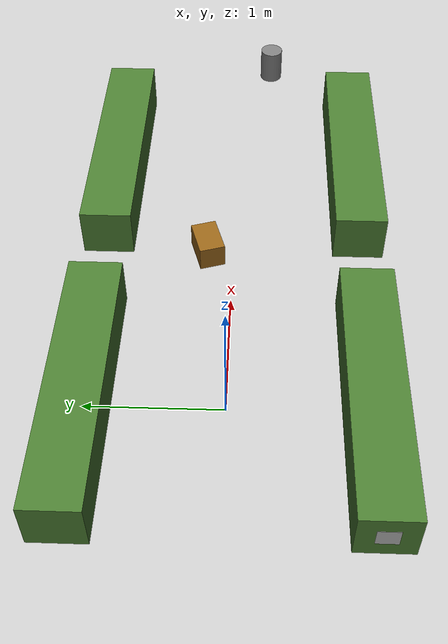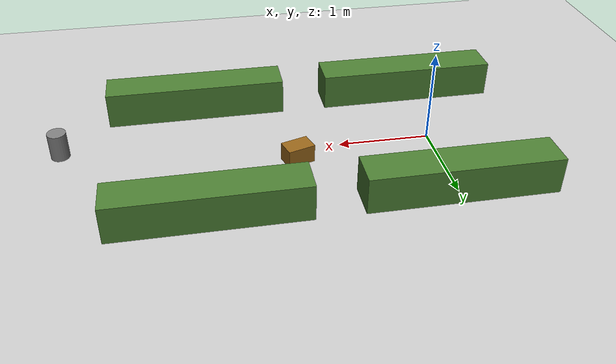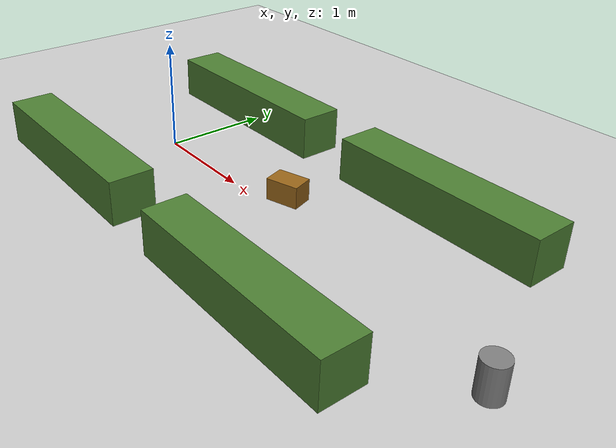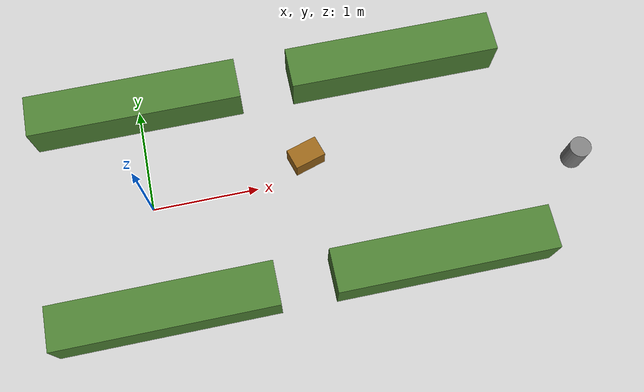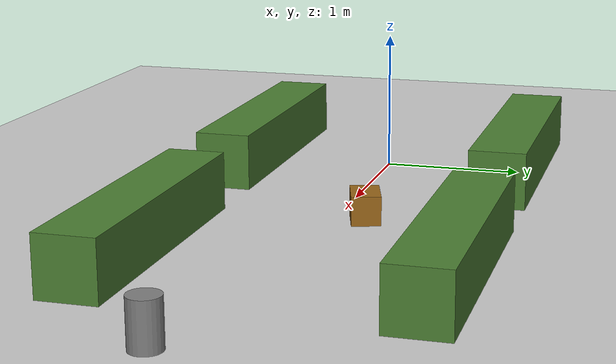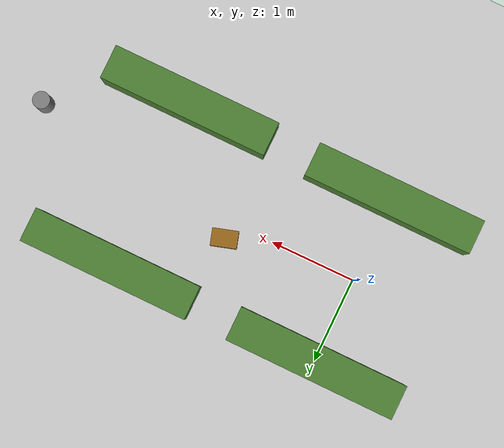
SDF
<sdf version="1.7">
 <world name="greenhouse">
  <model name="ground_plane">
   <static>true</static>
   <link name="link">
    <collision name="collision">
     <geometry><plane><normal>0 0 1</normal><size>100 100</size></plane></geometry>
    </collision>
    <visual name="visual">
     <geometry><plane><normal>0 0 1</normal><size>100 100</size></plane></geometry>
     <material><ambient>0.8 0.8 0.8 1</ambient></material>
    </visual>
   </link>
  </model>
  <light name="sun" type="directional">
   <pose>0 0 10 0 0 0</pose>
   <diffuse>1 1 1 1</diffuse>
   <specular>0.1 0.1 0.1 1</specular>
   <direction>-0.5 0.1 -0.9</direction>
  </light>
  <gravity>0 0 -9.8</gravity>
  <physics type="ode">
   <max_step_size>0.001</max_step_size>
   <real_time_factor>1</real_time_factor>
   <real_time_update_rate>1000</real_time_update_rate>
  </physics>
  <scene><ambient>0.4 0.4 0.4 1</ambient><background>0.53 0.81 0.92 1</background><shadows>0</shadows></scene>
  <model name="planter_l1">
   <static>true</static>
   <pose>0 -1.0 0.2 0 0 0</pose>
   <link name="link">
    <collision name="col"><geometry><box><size>2.0 0.4 0.4</size></box></geometry></collision>
    <visual name="vis">
     <geometry><box><size>2.0 0.4 0.4</size></box></geometry>
     <material><ambient>0.3 0.5 0.2 1</ambient></material>
    </visual>
    <visual name="apriltag_vis">
     <pose>-1.001 0 0 0 0 0</pose>
     <geometry><box><size>0.001 0.15 0.15</size></box></geometry>
     <material>
      <script>
       <uri>model://Apriltag36_11_00000/materials/scripts</uri>
       <uri>model://Apriltag36_11_00000/materials/textures</uri>
       <name>Apriltag36_11_00000</name>
      </script>
     </material>
    </visual>
   </link>
  </model>
  <model name="planter_l2">
   <static>true</static>
   <pose>2.5 -1.0 0.2 0 0 0</pose>
   <link name="link">
    <collision name="col"><geometry><box><size>2.0 0.4 0.4</size></box></geometry></collision>
    <visual name="vis">
     <geometry><box><size>2.0 0.4 0.4</size></box></geometry>
     <material><ambient>0.3 0.5 0.2 1</ambient></material>
    </visual>
   </link>
  </model>
  <model name="planter_r1">
   <static>true</static>
   <pose>0 1.0 0.2 0 0 0</pose>
   <link name="link">
    <collision name="col"><geometry><box><size>2.0 0.4 0.4</size></box></geometry></collision>
    <visual name="vis">
     <geometry><box><size>2.0 0.4 0.4</size></box></geometry>
     <material><ambient>0.3 0.5 0.2 1</ambient></material>
    </visual>
   </link>
  </model>
  <model name="planter_r2">
   <static>true</static>
   <pose>2.5 1.0 0.2 0 0 0</pose>
   <link name="link">
    <collision name="col"><geometry><box><size>2.0 0.4 0.4</size></box></geometry></collision>
    <visual name="vis">
     <geometry><box><size>2.0 0.4 0.4</size></box></geometry>
     <material><ambient>0.3 0.5 0.2 1</ambient></material>
    </visual>
   </link>
  </model>
  <model name="clutter_box1">
   <static>true</static>
   <pose>1.5 0.2 0.1 0 0 0.3</pose>
   <link name="link">
    <collision name="col"><geometry><box><size>0.3 0.2 0.2</size></box></geometry></collision>
    <visual name="vis">
     <geometry><box><size>0.3 0.2 0.2</size></box></geometry>
     <material><ambient>0.6 0.4 0.1 1</ambient></material>
    </visual>
   </link>
  </model>
  <model name="clutter_cylinder1">
   <static>true</static>
   <pose>4.0 -0.3 0.15 0 0 0</pose>
   <link name="link">
    <collision name="col">
     <geometry><cylinder><radius>0.1</radius><length>0.3</length></cylinder></geometry>
    </collision>
    <visual name="vis">
     <geometry><cylinder><radius>0.1</radius><length>0.3</length></cylinder></geometry>
     <material><ambient>0.5 0.5 0.5 1</ambient></material>
    </visual>
   </link>
  </model>
 </world>
</sdf>
